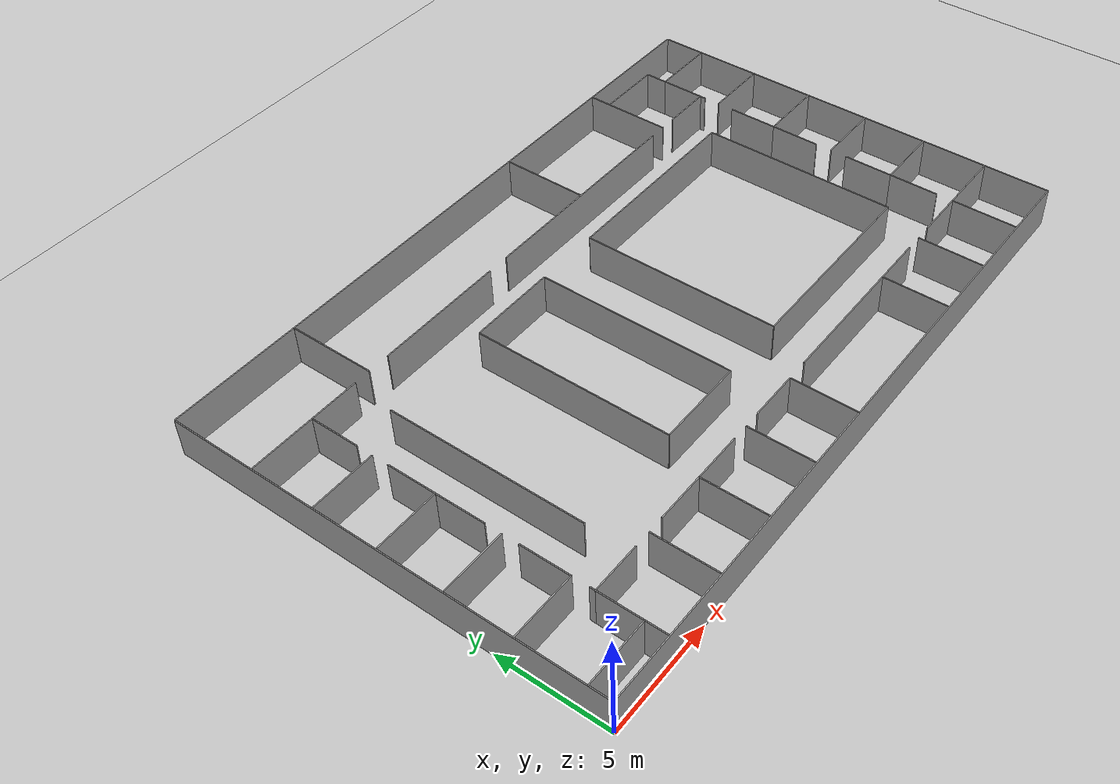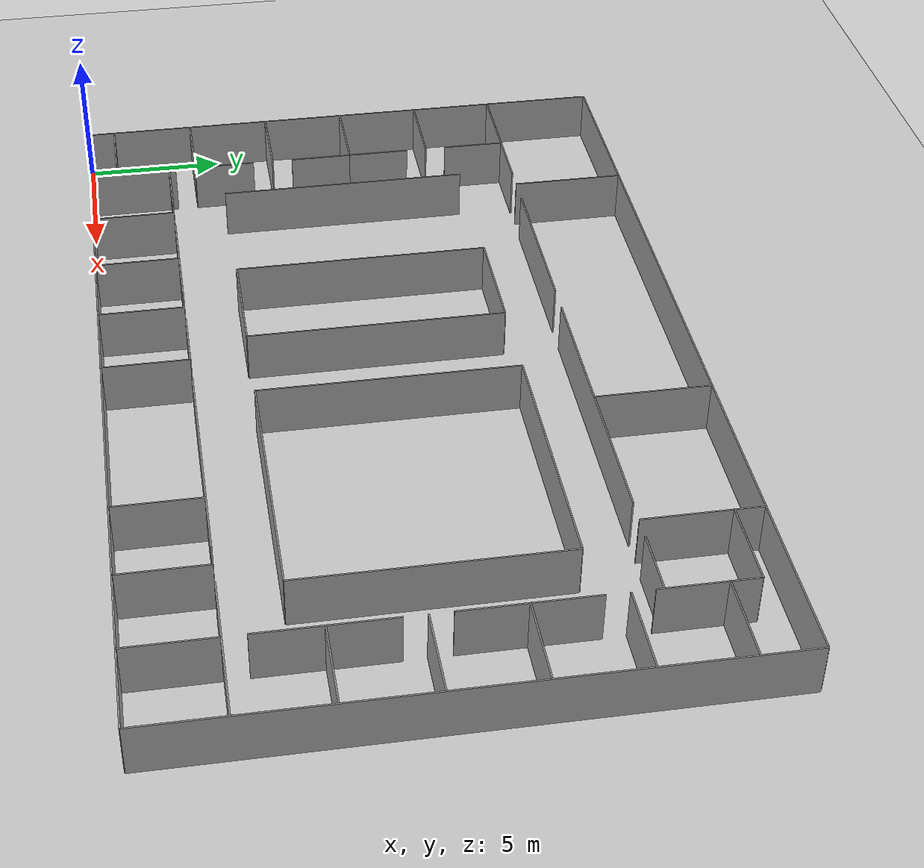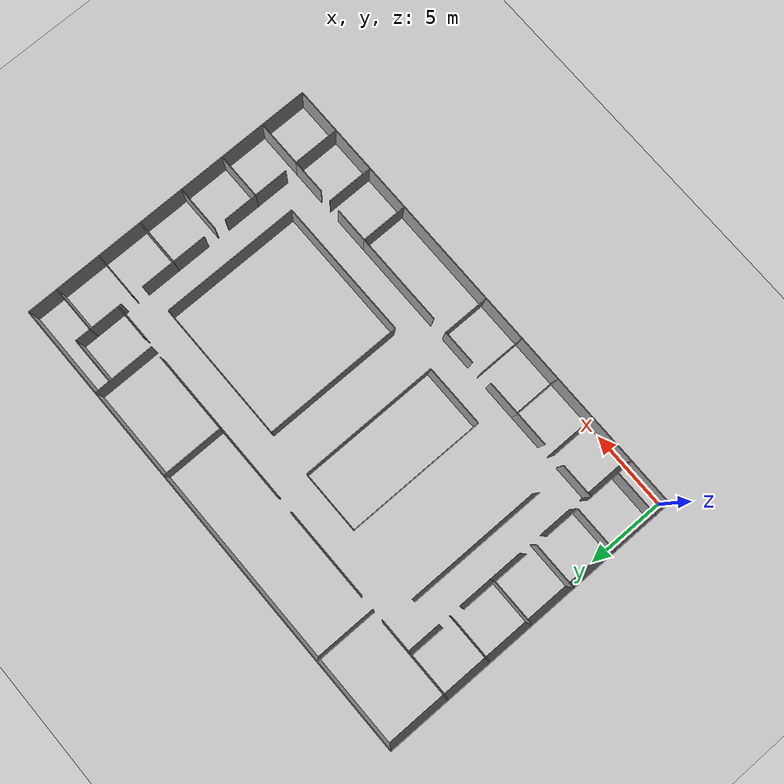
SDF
<sdf version="1.5">
 <world name="default">
  <include><uri>model://sun</uri></include>
  <include><uri>model://ground_plane</uri></include>
  <model name="grey_wall0">
   <static>1</static>
   <link name="link">
    <pose>15.5 0 1.4 0 -0 0</pose>
    <collision name="collision"><geometry><box><size>31.0 0.05 2.8</size></box></geometry></collision>
    <visual name="visual">
     <cast_shadows>0</cast_shadows>
     <geometry><box><size>31.0 0.05 2.8</size></box></geometry>
     <material>
      <script>
       <uri>model://grey_wall/materials/scripts</uri>
       <uri>model://grey_wall/materials/textures</uri>
       <name>vrc/grey_wall</name>
      </script>
     </material>
    </visual>
    <velocity_decay><linear>0</linear><angular>0</angular></velocity_decay>
   </link>
   <pose>0.0 0.0 -1 0 0 0.0</pose>
  </model>
  <model name="grey_wall1">
   <static>1</static>
   <link name="link">
    <pose>10.0 0 1.4 0 -0 0</pose>
    <collision name="collision"><geometry><box><size>20.0 0.05 2.8</size></box></geometry></collision>
    <visual name="visual">
     <cast_shadows>0</cast_shadows>
     <geometry><box><size>20.0 0.05 2.8</size></box></geometry>
     <material>
      <script>
       <uri>model://grey_wall/materials/scripts</uri>
       <uri>model://grey_wall/materials/textures</uri>
       <name>vrc/grey_wall</name>
      </script>
     </material>
    </visual>
    <velocity_decay><linear>0</linear><angular>0</angular></velocity_decay>
   </link>
   <pose>31.0 0.0 -1 0 0 1.57079632679</pose>
  </model>
  <model name="grey_wall2">
   <static>1</static>
   <link name="link">
    <pose>15.5 0 1.4 0 -0 0</pose>
    <collision name="collision"><geometry><box><size>31.0 0.05 2.8</size></box></geometry></collision>
    <visual name="visual">
     <cast_shadows>0</cast_shadows>
     <geometry><box><size>31.0 0.05 2.8</size></box></geometry>
     <material>
      <script>
       <uri>model://grey_wall/materials/scripts</uri>
       <uri>model://grey_wall/materials/textures</uri>
       <name>vrc/grey_wall</name>
      </script>
     </material>
    </visual>
    <velocity_decay><linear>0</linear><angular>0</angular></velocity_decay>
   </link>
   <pose>31.0 20.0 -1 0 0 3.14159265359</pose>
  </model>
  <model name="grey_wall3">
   <static>1</static>
   <link name="link">
    <pose>10.0 0 1.4 0 -0 0</pose>
    <collision name="collision"><geometry><box><size>20.0 0.05 2.8</size></box></geometry></collision>
    <visual name="visual">
     <cast_shadows>0</cast_shadows>
     <geometry><box><size>20.0 0.05 2.8</size></box></geometry>
     <material>
      <script>
       <uri>model://grey_wall/materials/scripts</uri>
       <uri>model://grey_wall/materials/textures</uri>
       <name>vrc/grey_wall</name>
      </script>
     </material>
    </visual>
    <velocity_decay><linear>0</linear><angular>0</angular></velocity_decay>
   </link>
   <pose>0.0 20.0 -1 0 0 -1.57079632679</pose>
  </model>
  <model name="grey_wall4">
   <static>1</static>
   <link name="link">
    <pose>4.5 0 1.4 0 -0 0</pose>
    <collision name="collision"><geometry><box><size>9.0 0.05 2.8</size></box></geometry></collision>
    <visual name="visual">
     <cast_shadows>0</cast_shadows>
     <geometry><box><size>9.0 0.05 2.8</size></box></geometry>
     <material>
      <script>
       <uri>model://grey_wall/materials/scripts</uri>
       <uri>model://grey_wall/materials/textures</uri>
       <name>vrc/grey_wall</name>
      </script>
     </material>
    </visual>
    <velocity_decay><linear>0</linear><angular>0</angular></velocity_decay>
   </link>
   <pose>17.0 5.0 -1 0 0 0.0</pose>
  </model>
  <model name="grey_wall5">
   <static>1</static>
   <link name="link">
    <pose>4.5 0 1.4 0 -0 0</pose>
    <collision name="collision"><geometry><box><size>9.0 0.05 2.8</size></box></geometry></collision>
    <visual name="visual">
     <cast_shadows>0</cast_shadows>
     <geometry><box><size>9.0 0.05 2.8</size></box></geometry>
     <material>
      <script>
       <uri>model://grey_wall/materials/scripts</uri>
       <uri>model://grey_wall/materials/textures</uri>
       <name>vrc/grey_wall</name>
      </script>
     </material>
    </visual>
    <velocity_decay><linear>0</linear><angular>0</angular></velocity_decay>
   </link>
   <pose>26.0 5.0 -1 0 0 1.57079632679</pose>
  </model>
  <model name="grey_wall6">
   <static>1</static>
   <link name="link">
    <pose>4.5 0 1.4 0 -0 0</pose>
    <collision name="collision"><geometry><box><size>9.0 0.05 2.8</size></box></geometry></collision>
    <visual name="visual">
     <cast_shadows>0</cast_shadows>
     <geometry><box><size>9.0 0.05 2.8</size></box></geometry>
     <material>
      <script>
       <uri>model://grey_wall/materials/scripts</uri>
       <uri>model://grey_wall/materials/textures</uri>
       <name>vrc/grey_wall</name>
      </script>
     </material>
    </visual>
    <velocity_decay><linear>0</linear><angular>0</angular></velocity_decay>
   </link>
   <pose>26.0 14.0 -1 0 0 3.14159265359</pose>
  </model>
  <model name="grey_wall7">
   <static>1</static>
   <link name="link">
    <pose>4.5 0 1.4 0 -0 0</pose>
    <collision name="collision"><geometry><box><size>9.0 0.05 2.8</size></box></geometry></collision>
    <visual name="visual">
     <cast_shadows>0</cast_shadows>
     <geometry><box><size>9.0 0.05 2.8</size></box></geometry>
     <material>
      <script>
       <uri>model://grey_wall/materials/scripts</uri>
       <uri>model://grey_wall/materials/textures</uri>
       <name>vrc/grey_wall</name>
      </script>
     </material>
    </visual>
    <velocity_decay><linear>0</linear><angular>0</angular></velocity_decay>
   </link>
   <pose>17.0 14.0 -1 0 0 -1.57079632679</pose>
  </model>
  <model name="grey_wall8">
   <static>1</static>
   <link name="link">
    <pose>2.0 0 1.4 0 -0 0</pose>
    <collision name="collision"><geometry><box><size>4.0 0.05 2.8</size></box></geometry></collision>
    <visual name="visual">
     <cast_shadows>0</cast_shadows>
     <geometry><box><size>4.0 0.05 2.8</size></box></geometry>
     <material>
      <script>
       <uri>model://grey_wall/materials/scripts</uri>
       <uri>model://grey_wall/materials/textures</uri>
       <name>vrc/grey_wall</name>
      </script>
     </material>
    </visual>
    <velocity_decay><linear>0</linear><angular>0</angular></velocity_decay>
   </link>
   <pose>10.0 5.0 -1 0 0 0.0</pose>
  </model>
  <model name="grey_wall9">
   <static>1</static>
   <link name="link">
    <pose>4.5 0 1.4 0 -0 0</pose>
    <collision name="collision"><geometry><box><size>9.0 0.05 2.8</size></box></geometry></collision>
    <visual name="visual">
     <cast_shadows>0</cast_shadows>
     <geometry><box><size>9.0 0.05 2.8</size></box></geometry>
     <material>
      <script>
       <uri>model://grey_wall/materials/scripts</uri>
       <uri>model://grey_wall/materials/textures</uri>
       <name>vrc/grey_wall</name>
      </script>
     </material>
    </visual>
    <velocity_decay><linear>0</linear><angular>0</angular></velocity_decay>
   </link>
   <pose>14.0 5.0 -1 0 0 1.57079632679</pose>
  </model>
  <model name="grey_wall10">
   <static>1</static>
   <link name="link">
    <pose>2.0 0 1.4 0 -0 0</pose>
    <collision name="collision"><geometry><box><size>4.0 0.05 2.8</size></box></geometry></collision>
    <visual name="visual">
     <cast_shadows>0</cast_shadows>
     <geometry><box><size>4.0 0.05 2.8</size></box></geometry>
     <material>
      <script>
       <uri>model://grey_wall/materials/scripts</uri>
       <uri>model://grey_wall/materials/textures</uri>
       <name>vrc/grey_wall</name>
      </script>
     </material>
    </visual>
    <velocity_decay><linear>0</linear><angular>0</angular></velocity_decay>
   </link>
   <pose>14.0 14.0 -1 0 0 3.14159265359</pose>
  </model>
  <model name="grey_wall11">
   <static>1</static>
   <link name="link">
    <pose>4.5 0 1.4 0 -0 0</pose>
    <collision name="collision"><geometry><box><size>9.0 0.05 2.8</size></box></geometry></collision>
    <visual name="visual">
     <cast_shadows>0</cast_shadows>
     <geometry><box><size>9.0 0.05 2.8</size></box></geometry>
     <material>
      <script>
       <uri>model://grey_wall/materials/scripts</uri>
       <uri>model://grey_wall/materials/textures</uri>
       <name>vrc/grey_wall</name>
      </script>
     </material>
    </visual>
    <velocity_decay><linear>0</linear><angular>0</angular></velocity_decay>
   </link>
   <pose>10.0 14.0 -1 0 0 -1.57079632679</pose>
  </model>
  <model name="grey_wall12">
   <static>1</static>
   <link name="link">
    <pose>4.5 0 1.4 0 -0 0</pose>
    <collision name="collision"><geometry><box><size>9.0 0.05 2.8</size></box></geometry></collision>
    <visual name="visual">
     <cast_shadows>0</cast_shadows>
     <geometry><box><size>9.0 0.05 2.8</size></box></geometry>
     <material>
      <script>
       <uri>model://grey_wall/materials/scripts</uri>
       <uri>model://grey_wall/materials/textures</uri>
       <name>vrc/grey_wall</name>
      </script>
     </material>
    </visual>
    <velocity_decay><linear>0</linear><angular>0</angular></velocity_decay>
   </link>
   <pose>5.0 5.0 -1 0 0 1.57079632679</pose>
  </model>
  <model name="grey_wall13">
   <static>1</static>
   <link name="link">
    <pose>1.5 0 1.4 0 -0 0</pose>
    <collision name="collision"><geometry><box><size>3.0 0.05 2.8</size></box></geometry></collision>
    <visual name="visual">
     <cast_shadows>0</cast_shadows>
     <geometry><box><size>3.0 0.05 2.8</size></box></geometry>
     <material>
      <script>
       <uri>model://grey_wall/materials/scripts</uri>
       <uri>model://grey_wall/materials/textures</uri>
       <name>vrc/grey_wall</name>
      </script>
     </material>
    </visual>
    <velocity_decay><linear>0</linear><angular>0</angular></velocity_decay>
   </link>
   <pose>3.0 0.0 -1 0 0 1.57079632679</pose>
  </model>
  <model name="grey_wall14">
   <static>1</static>
   <link name="link">
    <pose>1.5 0 1.4 0 -0 0</pose>
    <collision name="collision"><geometry><box><size>3.0 0.05 2.8</size></box></geometry></collision>
    <visual name="visual">
     <cast_shadows>0</cast_shadows>
     <geometry><box><size>3.0 0.05 2.8</size></box></geometry>
     <material>
      <script>
       <uri>model://grey_wall/materials/scripts</uri>
       <uri>model://grey_wall/materials/textures</uri>
       <name>vrc/grey_wall</name>
      </script>
     </material>
    </visual>
    <velocity_decay><linear>0</linear><angular>0</angular></velocity_decay>
   </link>
   <pose>6.0 0.0 -1 0 0 1.57079632679</pose>
  </model>
  <model name="grey_wall15">
   <static>1</static>
   <link name="link">
    <pose>1.5 0 1.4 0 -0 0</pose>
    <collision name="collision"><geometry><box><size>3.0 0.05 2.8</size></box></geometry></collision>
    <visual name="visual">
     <cast_shadows>0</cast_shadows>
     <geometry><box><size>3.0 0.05 2.8</size></box></geometry>
     <material>
      <script>
       <uri>model://grey_wall/materials/scripts</uri>
       <uri>model://grey_wall/materials/textures</uri>
       <name>vrc/grey_wall</name>
      </script>
     </material>
    </visual>
    <velocity_decay><linear>0</linear><angular>0</angular></velocity_decay>
   </link>
   <pose>9.0 0.0 -1 0 0 1.57079632679</pose>
  </model>
  <model name="grey_wall16">
   <static>1</static>
   <link name="link">
    <pose>1.5 0 1.4 0 -0 0</pose>
    <collision name="collision"><geometry><box><size>3.0 0.05 2.8</size></box></geometry></collision>
    <visual name="visual">
     <cast_shadows>0</cast_shadows>
     <geometry><box><size>3.0 0.05 2.8</size></box></geometry>
     <material>
      <script>
       <uri>model://grey_wall/materials/scripts</uri>
       <uri>model://grey_wall/materials/textures</uri>
       <name>vrc/grey_wall</name>
      </script>
     </material>
    </visual>
    <velocity_decay><linear>0</linear><angular>0</angular></velocity_decay>
   </link>
   <pose>12.0 0.0 -1 0 0 1.57079632679</pose>
  </model>
  <model name="grey_wall17">
   <static>1</static>
   <link name="link">
    <pose>1.5 0 1.4 0 -0 0</pose>
    <collision name="collision"><geometry><box><size>3.0 0.05 2.8</size></box></geometry></collision>
    <visual name="visual">
     <cast_shadows>0</cast_shadows>
     <geometry><box><size>3.0 0.05 2.8</size></box></geometry>
     <material>
      <script>
       <uri>model://grey_wall/materials/scripts</uri>
       <uri>model://grey_wall/materials/textures</uri>
       <name>vrc/grey_wall</name>
      </script>
     </material>
    </visual>
    <velocity_decay><linear>0</linear><angular>0</angular></velocity_decay>
   </link>
   <pose>15.0 0.0 -1 0 0 1.57079632679</pose>
  </model>
  <model name="grey_wall18">
   <static>1</static>
   <link name="link">
    <pose>1.5 0 1.4 0 -0 0</pose>
    <collision name="collision"><geometry><box><size>3.0 0.05 2.8</size></box></geometry></collision>
    <visual name="visual">
     <cast_shadows>0</cast_shadows>
     <geometry><box><size>3.0 0.05 2.8</size></box></geometry>
     <material>
      <script>
       <uri>model://grey_wall/materials/scripts</uri>
       <uri>model://grey_wall/materials/textures</uri>
       <name>vrc/grey_wall</name>
      </script>
     </material>
    </visual>
    <velocity_decay><linear>0</linear><angular>0</angular></velocity_decay>
   </link>
   <pose>22.0 0.0 -1 0 0 1.57079632679</pose>
  </model>
  <model name="grey_wall19">
   <static>1</static>
   <link name="link">
    <pose>1.5 0 1.4 0 -0 0</pose>
    <collision name="collision"><geometry><box><size>3.0 0.05 2.8</size></box></geometry></collision>
    <visual name="visual">
     <cast_shadows>0</cast_shadows>
     <geometry><box><size>3.0 0.05 2.8</size></box></geometry>
     <material>
      <script>
       <uri>model://grey_wall/materials/scripts</uri>
       <uri>model://grey_wall/materials/textures</uri>
       <name>vrc/grey_wall</name>
      </script>
     </material>
    </visual>
    <velocity_decay><linear>0</linear><angular>0</angular></velocity_decay>
   </link>
   <pose>25.0 0.0 -1 0 0 1.57079632679</pose>
  </model>
  <model name="grey_wall20">
   <static>1</static>
   <link name="link">
    <pose>1.5 0 1.4 0 -0 0</pose>
    <collision name="collision"><geometry><box><size>3.0 0.05 2.8</size></box></geometry></collision>
    <visual name="visual">
     <cast_shadows>0</cast_shadows>
     <geometry><box><size>3.0 0.05 2.8</size></box></geometry>
     <material>
      <script>
       <uri>model://grey_wall/materials/scripts</uri>
       <uri>model://grey_wall/materials/textures</uri>
       <name>vrc/grey_wall</name>
      </script>
     </material>
    </visual>
    <velocity_decay><linear>0</linear><angular>0</angular></velocity_decay>
   </link>
   <pose>28.0 0.0 -1 0 0 1.57079632679</pose>
  </model>
  <model name="grey_wall21">
   <static>1</static>
   <link name="link">
    <pose>1.125 0 1.4 0 -0 0</pose>
    <collision name="collision"><geometry><box><size>2.25 0.05 2.8</size></box></geometry></collision>
    <visual name="visual">
     <cast_shadows>0</cast_shadows>
     <geometry><box><size>2.25 0.05 2.8</size></box></geometry>
     <material>
      <script>
       <uri>model://grey_wall/materials/scripts</uri>
       <uri>model://grey_wall/materials/textures</uri>
       <name>vrc/grey_wall</name>
      </script>
     </material>
    </visual>
    <velocity_decay><linear>0</linear><angular>0</angular></velocity_decay>
   </link>
   <pose>3.0 3.0 -1 0 0 0.0</pose>
  </model>
  <model name="grey_wall22">
   <static>1</static>
   <link name="link">
    <pose>1.125 0 1.4 0 -0 0</pose>
    <collision name="collision"><geometry><box><size>2.25 0.05 2.8</size></box></geometry></collision>
    <visual name="visual">
     <cast_shadows>0</cast_shadows>
     <geometry><box><size>2.25 0.05 2.8</size></box></geometry>
     <material>
      <script>
       <uri>model://grey_wall/materials/scripts</uri>
       <uri>model://grey_wall/materials/textures</uri>
       <name>vrc/grey_wall</name>
      </script>
     </material>
    </visual>
    <velocity_decay><linear>0</linear><angular>0</angular></velocity_decay>
   </link>
   <pose>6.75 3.0 -1 0 0 0.0</pose>
  </model>
  <model name="grey_wall23">
   <static>1</static>
   <link name="link">
    <pose>1.125 0 1.4 0 -0 0</pose>
    <collision name="collision"><geometry><box><size>2.25 0.05 2.8</size></box></geometry></collision>
    <visual name="visual">
     <cast_shadows>0</cast_shadows>
     <geometry><box><size>2.25 0.05 2.8</size></box></geometry>
     <material>
      <script>
       <uri>model://grey_wall/materials/scripts</uri>
       <uri>model://grey_wall/materials/textures</uri>
       <name>vrc/grey_wall</name>
      </script>
     </material>
    </visual>
    <velocity_decay><linear>0</linear><angular>0</angular></velocity_decay>
   </link>
   <pose>9.0 3.0 -1 0 0 0.0</pose>
  </model>
  <model name="grey_wall24">
   <static>1</static>
   <link name="link">
    <pose>1.125 0 1.4 0 -0 0</pose>
    <collision name="collision"><geometry><box><size>2.25 0.05 2.8</size></box></geometry></collision>
    <visual name="visual">
     <cast_shadows>0</cast_shadows>
     <geometry><box><size>2.25 0.05 2.8</size></box></geometry>
     <material>
      <script>
       <uri>model://grey_wall/materials/scripts</uri>
       <uri>model://grey_wall/materials/textures</uri>
       <name>vrc/grey_wall</name>
      </script>
     </material>
    </visual>
    <velocity_decay><linear>0</linear><angular>0</angular></velocity_decay>
   </link>
   <pose>12.75 3.0 -1 0 0 0.0</pose>
  </model>
  <model name="grey_wall25">
   <static>1</static>
   <link name="link">
    <pose>3.0 0 1.4 0 -0 0</pose>
    <collision name="collision"><geometry><box><size>6.0 0.05 2.8</size></box></geometry></collision>
    <visual name="visual">
     <cast_shadows>0</cast_shadows>
     <geometry><box><size>6.0 0.05 2.8</size></box></geometry>
     <material>
      <script>
       <uri>model://grey_wall/materials/scripts</uri>
       <uri>model://grey_wall/materials/textures</uri>
       <name>vrc/grey_wall</name>
      </script>
     </material>
    </visual>
    <velocity_decay><linear>0</linear><angular>0</angular></velocity_decay>
   </link>
   <pose>16.0 3.0 -1 0 0 0.0</pose>
  </model>
  <model name="grey_wall26">
   <static>1</static>
   <link name="link">
    <pose>1.125 0 1.4 0 -0 0</pose>
    <collision name="collision"><geometry><box><size>2.25 0.05 2.8</size></box></geometry></collision>
    <visual name="visual">
     <cast_shadows>0</cast_shadows>
     <geometry><box><size>2.25 0.05 2.8</size></box></geometry>
     <material>
      <script>
       <uri>model://grey_wall/materials/scripts</uri>
       <uri>model://grey_wall/materials/textures</uri>
       <name>vrc/grey_wall</name>
      </script>
     </material>
    </visual>
    <velocity_decay><linear>0</linear><angular>0</angular></velocity_decay>
   </link>
   <pose>22.0 3.0 -1 0 0 0.0</pose>
  </model>
  <model name="grey_wall27">
   <static>1</static>
   <link name="link">
    <pose>1.125 0 1.4 0 -0 0</pose>
    <collision name="collision"><geometry><box><size>2.25 0.05 2.8</size></box></geometry></collision>
    <visual name="visual">
     <cast_shadows>0</cast_shadows>
     <geometry><box><size>2.25 0.05 2.8</size></box></geometry>
     <material>
      <script>
       <uri>model://grey_wall/materials/scripts</uri>
       <uri>model://grey_wall/materials/textures</uri>
       <name>vrc/grey_wall</name>
      </script>
     </material>
    </visual>
    <velocity_decay><linear>0</linear><angular>0</angular></velocity_decay>
   </link>
   <pose>25.75 3.0 -1 0 0 0.0</pose>
  </model>
  <model name="grey_wall28">
   <static>1</static>
   <link name="link">
    <pose>1.5 0 1.4 0 -0 0</pose>
    <collision name="collision"><geometry><box><size>3.0 0.05 2.8</size></box></geometry></collision>
    <visual name="visual">
     <cast_shadows>0</cast_shadows>
     <geometry><box><size>3.0 0.05 2.8</size></box></geometry>
     <material>
      <script>
       <uri>model://grey_wall/materials/scripts</uri>
       <uri>model://grey_wall/materials/textures</uri>
       <name>vrc/grey_wall</name>
      </script>
     </material>
    </visual>
    <velocity_decay><linear>0</linear><angular>0</angular></velocity_decay>
   </link>
   <pose>28.0 3.0 -1 0 0 0.0</pose>
  </model>
  <model name="grey_wall29">
   <static>1</static>
   <link name="link">
    <pose>1.5 0 1.4 0 -0 0</pose>
    <collision name="collision"><geometry><box><size>3.0 0.05 2.8</size></box></geometry></collision>
    <visual name="visual">
     <cast_shadows>0</cast_shadows>
     <geometry><box><size>3.0 0.05 2.8</size></box></geometry>
     <material>
      <script>
       <uri>model://grey_wall/materials/scripts</uri>
       <uri>model://grey_wall/materials/textures</uri>
       <name>vrc/grey_wall</name>
      </script>
     </material>
    </visual>
    <velocity_decay><linear>0</linear><angular>0</angular></velocity_decay>
   </link>
   <pose>28.0 6.0 -1 0 0 0.0</pose>
  </model>
  <model name="grey_wall30">
   <static>1</static>
   <link name="link">
    <pose>1.5 0 1.4 0 -0 0</pose>
    <collision name="collision"><geometry><box><size>3.0 0.05 2.8</size></box></geometry></collision>
    <visual name="visual">
     <cast_shadows>0</cast_shadows>
     <geometry><box><size>3.0 0.05 2.8</size></box></geometry>
     <material>
      <script>
       <uri>model://grey_wall/materials/scripts</uri>
       <uri>model://grey_wall/materials/textures</uri>
       <name>vrc/grey_wall</name>
      </script>
     </material>
    </visual>
    <velocity_decay><linear>0</linear><angular>0</angular></velocity_decay>
   </link>
   <pose>28.0 9.0 -1 0 0 0.0</pose>
  </model>
  <model name="grey_wall31">
   <static>1</static>
   <link name="link">
    <pose>1.5 0 1.4 0 -0 0</pose>
    <collision name="collision"><geometry><box><size>3.0 0.05 2.8</size></box></geometry></collision>
    <visual name="visual">
     <cast_shadows>0</cast_shadows>
     <geometry><box><size>3.0 0.05 2.8</size></box></geometry>
     <material>
      <script>
       <uri>model://grey_wall/materials/scripts</uri>
       <uri>model://grey_wall/materials/textures</uri>
       <name>vrc/grey_wall</name>
      </script>
     </material>
    </visual>
    <velocity_decay><linear>0</linear><angular>0</angular></velocity_decay>
   </link>
   <pose>28.0 12.0 -1 0 0 0.0</pose>
  </model>
  <model name="grey_wall32">
   <static>1</static>
   <link name="link">
    <pose>1.5 0 1.4 0 -0 0</pose>
    <collision name="collision"><geometry><box><size>3.0 0.05 2.8</size></box></geometry></collision>
    <visual name="visual">
     <cast_shadows>0</cast_shadows>
     <geometry><box><size>3.0 0.05 2.8</size></box></geometry>
     <material>
      <script>
       <uri>model://grey_wall/materials/scripts</uri>
       <uri>model://grey_wall/materials/textures</uri>
       <name>vrc/grey_wall</name>
      </script>
     </material>
    </visual>
    <velocity_decay><linear>0</linear><angular>0</angular></velocity_decay>
   </link>
   <pose>28.0 15.0 -1 0 0 0.0</pose>
  </model>
  <model name="grey_wall33">
   <static>1</static>
   <link name="link">
    <pose>1.5 0 1.4 0 -0 0</pose>
    <collision name="collision"><geometry><box><size>3.0 0.05 2.8</size></box></geometry></collision>
    <visual name="visual">
     <cast_shadows>0</cast_shadows>
     <geometry><box><size>3.0 0.05 2.8</size></box></geometry>
     <material>
      <script>
       <uri>model://grey_wall/materials/scripts</uri>
       <uri>model://grey_wall/materials/textures</uri>
       <name>vrc/grey_wall</name>
      </script>
     </material>
    </visual>
    <velocity_decay><linear>0</linear><angular>0</angular></velocity_decay>
   </link>
   <pose>28.0 18.0 -1 0 0 0.0</pose>
  </model>
  <model name="grey_wall34">
   <static>1</static>
   <link name="link">
    <pose>1.125 0 1.4 0 -0 0</pose>
    <collision name="collision"><geometry><box><size>2.25 0.05 2.8</size></box></geometry></collision>
    <visual name="visual">
     <cast_shadows>0</cast_shadows>
     <geometry><box><size>2.25 0.05 2.8</size></box></geometry>
     <material>
      <script>
       <uri>model://grey_wall/materials/scripts</uri>
       <uri>model://grey_wall/materials/textures</uri>
       <name>vrc/grey_wall</name>
      </script>
     </material>
    </visual>
    <velocity_decay><linear>0</linear><angular>0</angular></velocity_decay>
   </link>
   <pose>28.0 3.75 -1 0 0 1.57079632679</pose>
  </model>
  <model name="grey_wall35">
   <static>1</static>
   <link name="link">
    <pose>1.125 0 1.4 0 -0 0</pose>
    <collision name="collision"><geometry><box><size>2.25 0.05 2.8</size></box></geometry></collision>
    <visual name="visual">
     <cast_shadows>0</cast_shadows>
     <geometry><box><size>2.25 0.05 2.8</size></box></geometry>
     <material>
      <script>
       <uri>model://grey_wall/materials/scripts</uri>
       <uri>model://grey_wall/materials/textures</uri>
       <name>vrc/grey_wall</name>
      </script>
     </material>
    </visual>
    <velocity_decay><linear>0</linear><angular>0</angular></velocity_decay>
   </link>
   <pose>28.0 6.0 -1 0 0 1.57079632679</pose>
  </model>
  <model name="grey_wall36">
   <static>1</static>
   <link name="link">
    <pose>1.125 0 1.4 0 -0 0</pose>
    <collision name="collision"><geometry><box><size>2.25 0.05 2.8</size></box></geometry></collision>
    <visual name="visual">
     <cast_shadows>0</cast_shadows>
     <geometry><box><size>2.25 0.05 2.8</size></box></geometry>
     <material>
      <script>
       <uri>model://grey_wall/materials/scripts</uri>
       <uri>model://grey_wall/materials/textures</uri>
       <name>vrc/grey_wall</name>
      </script>
     </material>
    </visual>
    <velocity_decay><linear>0</linear><angular>0</angular></velocity_decay>
   </link>
   <pose>28.0 9.75 -1 0 0 1.57079632679</pose>
  </model>
  <model name="grey_wall37">
   <static>1</static>
   <link name="link">
    <pose>1.125 0 1.4 0 -0 0</pose>
    <collision name="collision"><geometry><box><size>2.25 0.05 2.8</size></box></geometry></collision>
    <visual name="visual">
     <cast_shadows>0</cast_shadows>
     <geometry><box><size>2.25 0.05 2.8</size></box></geometry>
     <material>
      <script>
       <uri>model://grey_wall/materials/scripts</uri>
       <uri>model://grey_wall/materials/textures</uri>
       <name>vrc/grey_wall</name>
      </script>
     </material>
    </visual>
    <velocity_decay><linear>0</linear><angular>0</angular></velocity_decay>
   </link>
   <pose>28.0 12.0 -1 0 0 1.57079632679</pose>
  </model>
  <model name="grey_wall38">
   <static>1</static>
   <link name="link">
    <pose>1.125 0 1.4 0 -0 0</pose>
    <collision name="collision"><geometry><box><size>2.25 0.05 2.8</size></box></geometry></collision>
    <visual name="visual">
     <cast_shadows>0</cast_shadows>
     <geometry><box><size>2.25 0.05 2.8</size></box></geometry>
     <material>
      <script>
       <uri>model://grey_wall/materials/scripts</uri>
       <uri>model://grey_wall/materials/textures</uri>
       <name>vrc/grey_wall</name>
      </script>
     </material>
    </visual>
    <velocity_decay><linear>0</linear><angular>0</angular></velocity_decay>
   </link>
   <pose>28.0 15.75 -1 0 0 1.57079632679</pose>
  </model>
  <model name="grey_wall39">
   <static>1</static>
   <link name="link">
    <pose>1.5 0 1.4 0 -0 0</pose>
    <collision name="collision"><geometry><box><size>3.0 0.05 2.8</size></box></geometry></collision>
    <visual name="visual">
     <cast_shadows>0</cast_shadows>
     <geometry><box><size>3.0 0.05 2.8</size></box></geometry>
     <material>
      <script>
       <uri>model://grey_wall/materials/scripts</uri>
       <uri>model://grey_wall/materials/textures</uri>
       <name>vrc/grey_wall</name>
      </script>
     </material>
    </visual>
    <velocity_decay><linear>0</linear><angular>0</angular></velocity_decay>
   </link>
   <pose>0.0 1.0 -1 0 0 0.0</pose>
  </model>
  <model name="grey_wall40">
   <static>1</static>
   <link name="link">
    <pose>1.5 0 1.4 0 -0 0</pose>
    <collision name="collision"><geometry><box><size>3.0 0.05 2.8</size></box></geometry></collision>
    <visual name="visual">
     <cast_shadows>0</cast_shadows>
     <geometry><box><size>3.0 0.05 2.8</size></box></geometry>
     <material>
      <script>
       <uri>model://grey_wall/materials/scripts</uri>
       <uri>model://grey_wall/materials/textures</uri>
       <name>vrc/grey_wall</name>
      </script>
     </material>
    </visual>
    <velocity_decay><linear>0</linear><angular>0</angular></velocity_decay>
   </link>
   <pose>0.0 4.0 -1 0 0 0.0</pose>
  </model>
  <model name="grey_wall41">
   <static>1</static>
   <link name="link">
    <pose>1.5 0 1.4 0 -0 0</pose>
    <collision name="collision"><geometry><box><size>3.0 0.05 2.8</size></box></geometry></collision>
    <visual name="visual">
     <cast_shadows>0</cast_shadows>
     <geometry><box><size>3.0 0.05 2.8</size></box></geometry>
     <material>
      <script>
       <uri>model://grey_wall/materials/scripts</uri>
       <uri>model://grey_wall/materials/textures</uri>
       <name>vrc/grey_wall</name>
      </script>
     </material>
    </visual>
    <velocity_decay><linear>0</linear><angular>0</angular></velocity_decay>
   </link>
   <pose>0.0 7.0 -1 0 0 0.0</pose>
  </model>
  <model name="grey_wall42">
   <static>1</static>
   <link name="link">
    <pose>1.5 0 1.4 0 -0 0</pose>
    <collision name="collision"><geometry><box><size>3.0 0.05 2.8</size></box></geometry></collision>
    <visual name="visual">
     <cast_shadows>0</cast_shadows>
     <geometry><box><size>3.0 0.05 2.8</size></box></geometry>
     <material>
      <script>
       <uri>model://grey_wall/materials/scripts</uri>
       <uri>model://grey_wall/materials/textures</uri>
       <name>vrc/grey_wall</name>
      </script>
     </material>
    </visual>
    <velocity_decay><linear>0</linear><angular>0</angular></velocity_decay>
   </link>
   <pose>0.0 10.0 -1 0 0 0.0</pose>
  </model>
  <model name="grey_wall43">
   <static>1</static>
   <link name="link">
    <pose>1.5 0 1.4 0 -0 0</pose>
    <collision name="collision"><geometry><box><size>3.0 0.05 2.8</size></box></geometry></collision>
    <visual name="visual">
     <cast_shadows>0</cast_shadows>
     <geometry><box><size>3.0 0.05 2.8</size></box></geometry>
     <material>
      <script>
       <uri>model://grey_wall/materials/scripts</uri>
       <uri>model://grey_wall/materials/textures</uri>
       <name>vrc/grey_wall</name>
      </script>
     </material>
    </visual>
    <velocity_decay><linear>0</linear><angular>0</angular></velocity_decay>
   </link>
   <pose>0.0 13.0 -1 0 0 0.0</pose>
  </model>
  <model name="grey_wall44">
   <static>1</static>
   <link name="link">
    <pose>1.5 0 1.4 0 -0 0</pose>
    <collision name="collision"><geometry><box><size>3.0 0.05 2.8</size></box></geometry></collision>
    <visual name="visual">
     <cast_shadows>0</cast_shadows>
     <geometry><box><size>3.0 0.05 2.8</size></box></geometry>
     <material>
      <script>
       <uri>model://grey_wall/materials/scripts</uri>
       <uri>model://grey_wall/materials/textures</uri>
       <name>vrc/grey_wall</name>
      </script>
     </material>
    </visual>
    <velocity_decay><linear>0</linear><angular>0</angular></velocity_decay>
   </link>
   <pose>0.0 16.0 -1 0 0 0.0</pose>
  </model>
  <model name="grey_wall45">
   <static>1</static>
   <link name="link">
    <pose>0.125 0 1.4 0 -0 0</pose>
    <collision name="collision"><geometry><box><size>0.25 0.05 2.8</size></box></geometry></collision>
    <visual name="visual">
     <cast_shadows>0</cast_shadows>
     <geometry><box><size>0.25 0.05 2.8</size></box></geometry>
     <material>
      <script>
       <uri>model://grey_wall/materials/scripts</uri>
       <uri>model://grey_wall/materials/textures</uri>
       <name>vrc/grey_wall</name>
      </script>
     </material>
    </visual>
    <velocity_decay><linear>0</linear><angular>0</angular></velocity_decay>
   </link>
   <pose>3.0 3.0 -1 0 0 1.57079632679</pose>
  </model>
  <model name="grey_wall46">
   <static>1</static>
   <link name="link">
    <pose>1.125 0 1.4 0 -0 0</pose>
    <collision name="collision"><geometry><box><size>2.25 0.05 2.8</size></box></geometry></collision>
    <visual name="visual">
     <cast_shadows>0</cast_shadows>
     <geometry><box><size>2.25 0.05 2.8</size></box></geometry>
     <material>
      <script>
       <uri>model://grey_wall/materials/scripts</uri>
       <uri>model://grey_wall/materials/textures</uri>
       <name>vrc/grey_wall</name>
      </script>
     </material>
    </visual>
    <velocity_decay><linear>0</linear><angular>0</angular></velocity_decay>
   </link>
   <pose>3.0 4.0 -1 0 0 1.57079632679</pose>
  </model>
  <model name="grey_wall47">
   <static>1</static>
   <link name="link">
    <pose>1.125 0 1.4 0 -0 0</pose>
    <collision name="collision"><geometry><box><size>2.25 0.05 2.8</size></box></geometry></collision>
    <visual name="visual">
     <cast_shadows>0</cast_shadows>
     <geometry><box><size>2.25 0.05 2.8</size></box></geometry>
     <material>
      <script>
       <uri>model://grey_wall/materials/scripts</uri>
       <uri>model://grey_wall/materials/textures</uri>
       <name>vrc/grey_wall</name>
      </script>
     </material>
    </visual>
    <velocity_decay><linear>0</linear><angular>0</angular></velocity_decay>
   </link>
   <pose>3.0 7.75 -1 0 0 1.57079632679</pose>
  </model>
  <model name="grey_wall48">
   <static>1</static>
   <link name="link">
    <pose>1.125 0 1.4 0 -0 0</pose>
    <collision name="collision"><geometry><box><size>2.25 0.05 2.8</size></box></geometry></collision>
    <visual name="visual">
     <cast_shadows>0</cast_shadows>
     <geometry><box><size>2.25 0.05 2.8</size></box></geometry>
     <material>
      <script>
       <uri>model://grey_wall/materials/scripts</uri>
       <uri>model://grey_wall/materials/textures</uri>
       <name>vrc/grey_wall</name>
      </script>
     </material>
    </visual>
    <velocity_decay><linear>0</linear><angular>0</angular></velocity_decay>
   </link>
   <pose>3.0 10.0 -1 0 0 1.57079632679</pose>
  </model>
  <model name="grey_wall49">
   <static>1</static>
   <link name="link">
    <pose>1.125 0 1.4 0 -0 0</pose>
    <collision name="collision"><geometry><box><size>2.25 0.05 2.8</size></box></geometry></collision>
    <visual name="visual">
     <cast_shadows>0</cast_shadows>
     <geometry><box><size>2.25 0.05 2.8</size></box></geometry>
     <material>
      <script>
       <uri>model://grey_wall/materials/scripts</uri>
       <uri>model://grey_wall/materials/textures</uri>
       <name>vrc/grey_wall</name>
      </script>
     </material>
    </visual>
    <velocity_decay><linear>0</linear><angular>0</angular></velocity_decay>
   </link>
   <pose>3.0 13.75 -1 0 0 1.57079632679</pose>
  </model>
  <model name="grey_wall50">
   <static>1</static>
   <link name="link">
    <pose>2.0 0 1.4 0 -0 0</pose>
    <collision name="collision"><geometry><box><size>4.0 0.05 2.8</size></box></geometry></collision>
    <visual name="visual">
     <cast_shadows>0</cast_shadows>
     <geometry><box><size>4.0 0.05 2.8</size></box></geometry>
     <material>
      <script>
       <uri>model://grey_wall/materials/scripts</uri>
       <uri>model://grey_wall/materials/textures</uri>
       <name>vrc/grey_wall</name>
      </script>
     </material>
    </visual>
    <velocity_decay><linear>0</linear><angular>0</angular></velocity_decay>
   </link>
   <pose>6.0 20.0 -1 0 0 -1.57079632679</pose>
  </model>
  <model name="grey_wall51">
   <static>1</static>
   <link name="link">
    <pose>2.0 0 1.4 0 -0 0</pose>
    <collision name="collision"><geometry><box><size>4.0 0.05 2.8</size></box></geometry></collision>
    <visual name="visual">
     <cast_shadows>0</cast_shadows>
     <geometry><box><size>4.0 0.05 2.8</size></box></geometry>
     <material>
      <script>
       <uri>model://grey_wall/materials/scripts</uri>
       <uri>model://grey_wall/materials/textures</uri>
       <name>vrc/grey_wall</name>
      </script>
     </material>
    </visual>
    <velocity_decay><linear>0</linear><angular>0</angular></velocity_decay>
   </link>
   <pose>19.0 20.0 -1 0 0 -1.57079632679</pose>
  </model>
  <model name="grey_wall52">
   <static>1</static>
   <link name="link">
    <pose>2.0 0 1.4 0 -0 0</pose>
    <collision name="collision"><geometry><box><size>4.0 0.05 2.8</size></box></geometry></collision>
    <visual name="visual">
     <cast_shadows>0</cast_shadows>
     <geometry><box><size>4.0 0.05 2.8</size></box></geometry>
     <material>
      <script>
       <uri>model://grey_wall/materials/scripts</uri>
       <uri>model://grey_wall/materials/textures</uri>
       <name>vrc/grey_wall</name>
      </script>
     </material>
    </visual>
    <velocity_decay><linear>0</linear><angular>0</angular></velocity_decay>
   </link>
   <pose>25.0 20.0 -1 0 0 -1.57079632679</pose>
  </model>
  <model name="grey_wall53">
   <static>1</static>
   <link name="link">
    <pose>1.5 0 1.4 0 -0 0</pose>
    <collision name="collision"><geometry><box><size>3.0 0.05 2.8</size></box></geometry></collision>
    <visual name="visual">
     <cast_shadows>0</cast_shadows>
     <geometry><box><size>3.0 0.05 2.8</size></box></geometry>
     <material>
      <script>
       <uri>model://grey_wall/materials/scripts</uri>
       <uri>model://grey_wall/materials/textures</uri>
       <name>vrc/grey_wall</name>
      </script>
     </material>
    </visual>
    <velocity_decay><linear>0</linear><angular>0</angular></velocity_decay>
   </link>
   <pose>25.0 19.0 -1 0 0 0.0</pose>
  </model>
  <model name="grey_wall54">
   <static>1</static>
   <link name="link">
    <pose>0.5 0 1.4 0 -0 0</pose>
    <collision name="collision"><geometry><box><size>1.0 0.05 2.8</size></box></geometry></collision>
    <visual name="visual">
     <cast_shadows>0</cast_shadows>
     <geometry><box><size>1.0 0.05 2.8</size></box></geometry>
     <material>
      <script>
       <uri>model://grey_wall/materials/scripts</uri>
       <uri>model://grey_wall/materials/textures</uri>
       <name>vrc/grey_wall</name>
      </script>
     </material>
    </visual>
    <velocity_decay><linear>0</linear><angular>0</angular></velocity_decay>
   </link>
   <pose>28.0 19.0 -1 0 0 -1.57079632679</pose>
  </model>
  <model name="grey_wall55">
   <static>1</static>
   <link name="link">
    <pose>1.125 0 1.4 0 -0 0</pose>
    <collision name="collision"><geometry><box><size>2.25 0.05 2.8</size></box></geometry></collision>
    <visual name="visual">
     <cast_shadows>0</cast_shadows>
     <geometry><box><size>2.25 0.05 2.8</size></box></geometry>
     <material>
      <script>
       <uri>model://grey_wall/materials/scripts</uri>
       <uri>model://grey_wall/materials/textures</uri>
       <name>vrc/grey_wall</name>
      </script>
     </material>
    </visual>
    <velocity_decay><linear>0</linear><angular>0</angular></velocity_decay>
   </link>
   <pose>3.0 16.0 -1 0 0 0.0</pose>
  </model>
  <model name="grey_wall56">
   <static>1</static>
   <link name="link">
    <pose>3.0 0 1.4 0 -0 0</pose>
    <collision name="collision"><geometry><box><size>6.0 0.05 2.8</size></box></geometry></collision>
    <visual name="visual">
     <cast_shadows>0</cast_shadows>
     <geometry><box><size>6.0 0.05 2.8</size></box></geometry>
     <material>
      <script>
       <uri>model://grey_wall/materials/scripts</uri>
       <uri>model://grey_wall/materials/textures</uri>
       <name>vrc/grey_wall</name>
      </script>
     </material>
    </visual>
    <velocity_decay><linear>0</linear><angular>0</angular></velocity_decay>
   </link>
   <pose>7.0 16.0 -1 0 0 0.0</pose>
  </model>
  <model name="grey_wall57">
   <static>1</static>
   <link name="link">
    <pose>5.125 0 1.4 0 -0 0</pose>
    <collision name="collision"><geometry><box><size>10.25 0.05 2.8</size></box></geometry></collision>
    <visual name="visual">
     <cast_shadows>0</cast_shadows>
     <geometry><box><size>10.25 0.05 2.8</size></box></geometry>
     <material>
      <script>
       <uri>model://grey_wall/materials/scripts</uri>
       <uri>model://grey_wall/materials/textures</uri>
       <name>vrc/grey_wall</name>
      </script>
     </material>
    </visual>
    <velocity_decay><linear>0</linear><angular>0</angular></velocity_decay>
   </link>
   <pose>14.0 16.0 -1 0 0 0.0</pose>
  </model>
  <model name="grey_wall58">
   <static>1</static>
   <link name="link">
    <pose>1.125 0 1.4 0 -0 0</pose>
    <collision name="collision"><geometry><box><size>2.25 0.05 2.8</size></box></geometry></collision>
    <visual name="visual">
     <cast_shadows>0</cast_shadows>
     <geometry><box><size>2.25 0.05 2.8</size></box></geometry>
     <material>
      <script>
       <uri>model://grey_wall/materials/scripts</uri>
       <uri>model://grey_wall/materials/textures</uri>
       <name>vrc/grey_wall</name>
      </script>
     </material>
    </visual>
    <velocity_decay><linear>0</linear><angular>0</angular></velocity_decay>
   </link>
   <pose>25.75 16.0 -1 0 0 0.0</pose>
  </model>
 </world>
</sdf>
